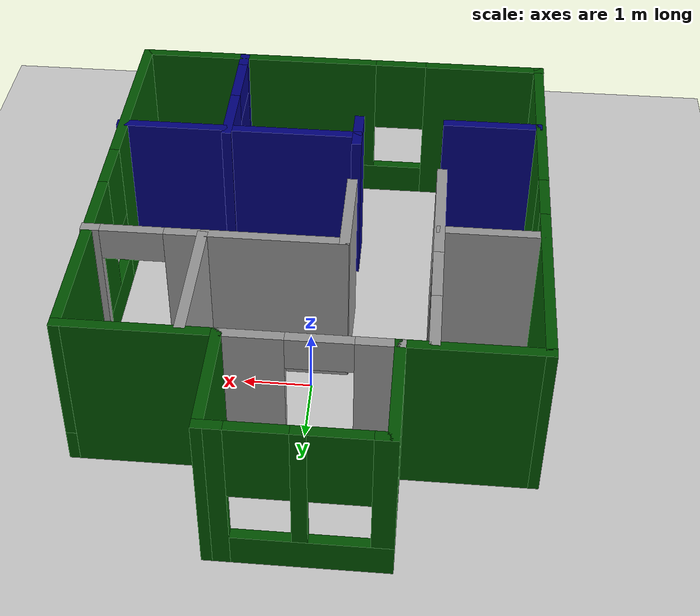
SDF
<sdf version="1.6">
 <world name="default">
  <model name="ground_plane">
   <static>1</static>
   <link name="link">
    <collision name="collision">
     <geometry><plane><normal>0 0 1</normal><size>100 100</size></plane></geometry>
     <surface>
      <contact><collide_bitmask>65535</collide_bitmask></contact>
      <friction><ode><mu>100</mu><mu2>50</mu2></ode></friction>
     </surface>
    </collision>
    <visual name="visual">
     <cast_shadows>0</cast_shadows>
     <geometry><plane><normal>0 0 1</normal><size>100 100</size></plane></geometry>
     <material>
      <script><uri>file://media/materials/scripts/gazebo.material</uri><name>Gazebo/Grey</name></script>
     </material>
    </visual>
   </link>
  </model>
  <model name="house">
   <pose>-0.01675 -0.86593 0 0 -0 0</pose>
   <link name="Wall_10">
    <collision name="Wall_10_Collision">
     <geometry><box><size>2.25 0.15 2.5</size></box></geometry>
     <pose>0 0 1.25 0 -0 0</pose>
    </collision>
    <visual name="Wall_10_Visual">
     <pose>0 0 1.25 0 -0 0</pose>
     <geometry><box><size>2.25 0.15 2.5</size></box></geometry>
     <material>
      <script><uri>file://media/materials/scripts/gazebo.material</uri><name>Gazebo/Grey</name></script>
      <ambient>0 0.333333 0 1</ambient>
     </material>
     <meta><layer>0</layer></meta>
    </visual>
    <pose>2.11595 2.48106 0 0 -0 3.14159</pose>
   </link>
   <link name="Wall_11">
    <collision name="Wall_11_Collision">
     <geometry><box><size>1.75 0.15 2.5</size></box></geometry>
     <pose>0 0 1.25 0 -0 0</pose>
    </collision>
    <visual name="Wall_11_Visual">
     <pose>0 0 1.25 0 -0 0</pose>
     <geometry><box><size>1.75 0.15 2.5</size></box></geometry>
     <material>
      <script><uri>file://media/materials/scripts/gazebo.material</uri><name>Gazebo/Grey</name></script>
      <ambient>0 0.333333 0 1</ambient>
     </material>
     <meta><layer>0</layer></meta>
    </visual>
    <pose>1.06595 3.28106 0 0 -0 1.5708</pose>
   </link>
   <link name="Wall_12">
    <pose>-0.10905 4.08106 0 0 -0 3.14159</pose>
    <visual name="Wall_12_Visual_0">
     <pose>-1.05634 0 1.25 0 -0 0</pose>
     <geometry><box><size>0.387325 0.15 2.5</size></box></geometry>
     <material>
      <script><uri>file://media/materials/scripts/gazebo.material</uri><name>Gazebo/Grey</name></script>
      <ambient>0 0.333333 0 1</ambient>
     </material>
     <meta><layer>0</layer></meta>
    </visual>
    <collision name="Wall_12_Collision_0">
     <geometry><box><size>0.387325 0.15 2.5</size></box></geometry>
     <pose>-1.05634 0 1.25 0 -0 0</pose>
    </collision>
    <visual name="Wall_12_Visual_1">
     <pose>0.193662 0 0.25 0 -0 0</pose>
     <geometry><box><size>2.11267 0.15 0.5</size></box></geometry>
     <material>
      <script><uri>file://media/materials/scripts/gazebo.material</uri><name>Gazebo/Grey</name></script>
      <ambient>0 0.333333 0 1</ambient>
     </material>
     <meta><layer>0</layer></meta>
    </visual>
    <collision name="Wall_12_Collision_1">
     <geometry><box><size>2.11267 0.15 0.5</size></box></geometry>
     <pose>0.193662 0 0.25 0 -0 0</pose>
    </collision>
    <visual name="Wall_12_Visual_2">
     <pose>0.041554 0 1.5 0 -0 0</pose>
     <geometry><box><size>0.208458 0.15 2</size></box></geometry>
     <material>
      <script><uri>file://media/materials/scripts/gazebo.material</uri><name>Gazebo/Grey</name></script>
      <ambient>0 0.333333 0 1</ambient>
     </material>
     <meta><layer>0</layer></meta>
    </visual>
    <collision name="Wall_12_Collision_2">
     <geometry><box><size>0.208458 0.15 2</size></box></geometry>
     <pose>0.041554 0 1.5 0 -0 0</pose>
    </collision>
    <visual name="Wall_12_Visual_3">
     <pose>1.09789 0 1.5 0 -0 0</pose>
     <geometry><box><size>0.304217 0.15 2</size></box></geometry>
     <material>
      <script><uri>file://media/materials/scripts/gazebo.material</uri><name>Gazebo/Grey</name></script>
      <ambient>0 0.333333 0 1</ambient>
     </material>
     <meta><layer>0</layer></meta>
    </visual>
    <collision name="Wall_12_Collision_3">
     <geometry><box><size>0.304217 0.15 2</size></box></geometry>
     <pose>1.09789 0 1.5 0 -0 0</pose>
    </collision>
    <visual name="Wall_12_Visual_4">
     <pose>-0.462675 0 1.9 0 -0 0</pose>
     <geometry><box><size>0.8 0.15 1.2</size></box></geometry>
     <material>
      <script><uri>file://media/materials/scripts/gazebo.material</uri><name>Gazebo/Grey</name></script>
      <ambient>0 0.333333 0 1</ambient>
     </material>
     <meta><layer>0</layer></meta>
    </visual>
    <collision name="Wall_12_Collision_4">
     <geometry><box><size>0.8 0.15 1.2</size></box></geometry>
     <pose>-0.462675 0 1.9 0 -0 0</pose>
    </collision>
    <visual name="Wall_12_Visual_5">
     <pose>0.545783 0 1.9 0 -0 0</pose>
     <geometry><box><size>0.8 0.15 1.2</size></box></geometry>
     <material>
      <script><uri>file://media/materials/scripts/gazebo.material</uri><name>Gazebo/Grey</name></script>
      <ambient>0 0.333333 0 1</ambient>
     </material>
     <meta><layer>0</layer></meta>
    </visual>
    <collision name="Wall_12_Collision_5">
     <geometry><box><size>0.8 0.15 1.2</size></box></geometry>
     <pose>0.545783 0 1.9 0 -0 0</pose>
    </collision>
   </link>
   <link name="Wall_13">
    <collision name="Wall_13_Collision">
     <geometry><box><size>1.75 0.15 2.5</size></box></geometry>
     <pose>0 0 1.25 0 -0 0</pose>
    </collision>
    <visual name="Wall_13_Visual">
     <pose>0 0 1.25 0 -0 0</pose>
     <geometry><box><size>1.75 0.15 2.5</size></box></geometry>
     <material>
      <script><uri>file://media/materials/scripts/gazebo.material</uri><name>Gazebo/Grey</name></script>
      <ambient>0 0.333333 0 1</ambient>
     </material>
     <meta><layer>0</layer></meta>
    </visual>
    <pose>-1.28405 3.28106 0 0 -0 -1.5708</pose>
   </link>
   <link name="Wall_14">
    <collision name="Wall_14_Collision">
     <geometry><box><size>2.05 0.15 2.5</size></box></geometry>
     <pose>0 0 1.25 0 -0 0</pose>
    </collision>
    <visual name="Wall_14_Visual">
     <pose>0 0 1.25 0 -0 0</pose>
     <geometry><box><size>2.05 0.15 2.5</size></box></geometry>
     <material>
      <script><uri>file://media/materials/scripts/gazebo.material</uri><name>Gazebo/Grey</name></script>
      <ambient>0 0.333333 0 1</ambient>
     </material>
     <meta><layer>0</layer></meta>
    </visual>
    <pose>-2.23405 2.48106 0 0 -0 3.14159</pose>
   </link>
   <link name="Wall_15">
    <pose>-3.18405 -0.799958 0 0 -0 -1.5708</pose>
    <visual name="Wall_15_Visual_0">
     <pose>-1.90849 0 1.25 0 -0 0</pose>
     <geometry><box><size>2.89522 0.15 2.5</size></box></geometry>
     <material>
      <script><uri>file://media/materials/scripts/gazebo.material</uri><name>Gazebo/Grey</name></script>
      <ambient>0 0.333333 0 1</ambient>
     </material>
     <meta><layer>0</layer></meta>
    </visual>
    <collision name="Wall_15_Collision_0">
     <geometry><box><size>2.89522 0.15 2.5</size></box></geometry>
     <pose>-1.90849 0 1.25 0 -0 0</pose>
    </collision>
    <visual name="Wall_15_Visual_1">
     <pose>1.44761 0 0.25 0 -0 0</pose>
     <geometry><box><size>3.81698 0.15 0.5</size></box></geometry>
     <material>
      <script><uri>file://media/materials/scripts/gazebo.material</uri><name>Gazebo/Grey</name></script>
      <ambient>0 0.333333 0 1</ambient>
     </material>
     <meta><layer>0</layer></meta>
    </visual>
    <collision name="Wall_15_Collision_1">
     <geometry><box><size>3.81698 0.15 0.5</size></box></geometry>
     <pose>1.44761 0 0.25 0 -0 0</pose>
    </collision>
    <visual name="Wall_15_Visual_2">
     <pose>1.84761 0 1.5 0 -0 0</pose>
     <geometry><box><size>3.01699 0.15 2</size></box></geometry>
     <material>
      <script><uri>file://media/materials/scripts/gazebo.material</uri><name>Gazebo/Grey</name></script>
      <ambient>0 0.333333 0 1</ambient>
     </material>
     <meta><layer>0</layer></meta>
    </visual>
    <collision name="Wall_15_Collision_2">
     <geometry><box><size>3.01699 0.15 2</size></box></geometry>
     <pose>1.84761 0 1.5 0 -0 0</pose>
    </collision>
    <visual name="Wall_15_Visual_3">
     <pose>-0.060885 0 1.9 0 -0 0</pose>
     <geometry><box><size>0.8 0.15 1.2</size></box></geometry>
     <material>
      <script><uri>file://media/materials/scripts/gazebo.material</uri><name>Gazebo/Grey</name></script>
      <ambient>0 0.333333 0 1</ambient>
     </material>
     <meta><layer>0</layer></meta>
    </visual>
    <collision name="Wall_15_Collision_3">
     <geometry><box><size>0.8 0.15 1.2</size></box></geometry>
     <pose>-0.060885 0 1.9 0 -0 0</pose>
    </collision>
   </link>
   <link name="Wall_18">
    <pose>-0.10905 2.48106 0 0 -0 0</pose>
    <visual name="Wall_18_Visual_0">
     <pose>-0.923545 0 1.25 0 -0 0</pose>
     <geometry><box><size>0.65291 0.15 2.5</size></box></geometry>
     <material>
      <script><uri>file://media/materials/scripts/gazebo.material</uri><name>Gazebo/Grey</name></script>
      <ambient>1 1 1 1</ambient>
     </material>
     <meta><layer>0</layer></meta>
    </visual>
    <collision name="Wall_18_Collision_0">
     <geometry><box><size>0.65291 0.15 2.5</size></box></geometry>
     <pose>-0.923545 0 1.25 0 -0 0</pose>
    </collision>
    <visual name="Wall_18_Visual_1">
     <pose>0.776455 0 1.25 0 -0 0</pose>
     <geometry><box><size>0.94709 0.15 2.5</size></box></geometry>
     <material>
      <script><uri>file://media/materials/scripts/gazebo.material</uri><name>Gazebo/Grey</name></script>
      <ambient>1 1 1 1</ambient>
     </material>
     <meta><layer>0</layer></meta>
    </visual>
    <collision name="Wall_18_Collision_1">
     <geometry><box><size>0.94709 0.15 2.5</size></box></geometry>
     <pose>0.776455 0 1.25 0 -0 0</pose>
    </collision>
    <visual name="Wall_18_Visual_2">
     <pose>-0.14709 0 2.25 0 -0 0</pose>
     <geometry><box><size>0.9 0.15 0.5</size></box></geometry>
     <material>
      <script><uri>file://media/materials/scripts/gazebo.material</uri><name>Gazebo/Grey</name></script>
      <ambient>1 1 1 1</ambient>
     </material>
     <meta><layer>0</layer></meta>
    </visual>
    <collision name="Wall_18_Collision_2">
     <geometry><box><size>0.9 0.15 0.5</size></box></geometry>
     <pose>-0.14709 0 2.25 0 -0 0</pose>
    </collision>
   </link>
   <link name="Wall_20">
    <pose>1.38768 0.513735 0 0 -0 3.14159</pose>
    <visual name="Wall_20_Visual_0">
     <pose>-1.74188 0 1.25 0 -0 0</pose>
     <geometry><box><size>0.266242 0.15 2.5</size></box></geometry>
     <material>
      <script><uri>file://media/materials/scripts/gazebo.material</uri><name>Gazebo/Grey</name></script>
      <ambient>1 1 1 1</ambient>
     </material>
     <meta><layer>0</layer></meta>
    </visual>
    <collision name="Wall_20_Collision_0">
     <geometry><box><size>0.266242 0.15 2.5</size></box></geometry>
     <pose>-1.74188 0 1.25 0 -0 0</pose>
    </collision>
    <visual name="Wall_20_Visual_1">
     <pose>0.583121 0 1.25 0 -0 0</pose>
     <geometry><box><size>2.58376 0.15 2.5</size></box></geometry>
     <material>
      <script><uri>file://media/materials/scripts/gazebo.material</uri><name>Gazebo/Grey</name></script>
      <ambient>1 1 1 1</ambient>
     </material>
     <meta><layer>0</layer></meta>
    </visual>
    <collision name="Wall_20_Collision_1">
     <geometry><box><size>2.58376 0.15 2.5</size></box></geometry>
     <pose>0.583121 0 1.25 0 -0 0</pose>
    </collision>
    <visual name="Wall_20_Visual_2">
     <pose>-1.15876 0 2.25 0 -0 0</pose>
     <geometry><box><size>0.9 0.15 0.5</size></box></geometry>
     <material>
      <script><uri>file://media/materials/scripts/gazebo.material</uri><name>Gazebo/Grey</name></script>
      <ambient>1 1 1 1</ambient>
     </material>
     <meta><layer>0</layer></meta>
    </visual>
    <collision name="Wall_20_Collision_2">
     <geometry><box><size>0.9 0.15 0.5</size></box></geometry>
     <pose>-1.15876 0 2.25 0 -0 0</pose>
    </collision>
   </link>
   <link name="Wall_21">
    <collision name="Wall_21_Collision">
     <geometry><box><size>1.5 0.15 2.5</size></box></geometry>
     <pose>0 0 1.25 0 -0 0</pose>
    </collision>
    <visual name="Wall_21_Visual">
     <pose>0 0 1.25 0 -0 0</pose>
     <geometry><box><size>1.5 0.15 2.5</size></box></geometry>
     <material>
      <script><uri>file://media/materials/scripts/gazebo.material</uri><name>Gazebo/Grey</name></script>
      <ambient>1 1 1 1</ambient>
     </material>
     <meta><layer>0</layer></meta>
    </visual>
    <pose>-0.42405 -0.161265 0 0 -0 -1.5708</pose>
   </link>
   <link name="Wall_24">
    <collision name="Wall_24_Collision">
     <geometry><box><size>0.75 0.15 2.5</size></box></geometry>
     <pose>0 0 1.25 0 -0 0</pose>
    </collision>
    <visual name="Wall_24_Visual">
     <pose>0 0 1.25 0 -0 0</pose>
     <geometry><box><size>0.75 0.15 2.5</size></box></geometry>
     <material>
      <script><uri>file://media/materials/scripts/gazebo.material</uri><name>Gazebo/Grey</name></script>
      <ambient>0 0 0.498039 1</ambient>
     </material>
     <meta><layer>0</layer></meta>
    </visual>
    <pose>-0.415776 -2.15984 0 0 -0 -1.5708</pose>
   </link>
   <link name="Wall_36">
    <collision name="Wall_36_Collision">
     <geometry><box><size>1.5 0.15 2.5</size></box></geometry>
     <pose>0 0 1.25 0 -0 0</pose>
    </collision>
    <visual name="Wall_36_Visual">
     <pose>0 0 1.25 0 -0 0</pose>
     <geometry><box><size>1.5 0.15 2.5</size></box></geometry>
     <material>
      <script><uri>file://media/materials/scripts/gazebo.material</uri><name>Gazebo/Grey</name></script>
      <ambient>0 0 0.498039 1</ambient>
     </material>
     <meta><layer>0</layer></meta>
    </visual>
    <pose>-2.45376 -2.47368 0 0 -0 0</pose>
   </link>
   <link name="Wall_38">
    <pose>-1.71474 0.603069 0 0 -0 -1.5708</pose>
    <visual name="Wall_38_Visual_0">
     <pose>-1.39969 0 1.25 0 -0 0</pose>
     <geometry><box><size>0.950613 0.15 2.5</size></box></geometry>
     <material>
      <script><uri>file://media/materials/scripts/gazebo.material</uri><name>Gazebo/Grey</name></script>
      <ambient>1 1 1 1</ambient>
     </material>
     <meta><layer>0</layer></meta>
    </visual>
    <collision name="Wall_38_Collision_0">
     <geometry><box><size>0.950613 0.15 2.5</size></box></geometry>
     <pose>-1.39969 0 1.25 0 -0 0</pose>
    </collision>
    <visual name="Wall_38_Visual_1">
     <pose>0.925306 0 1.25 0 -0 0</pose>
     <geometry><box><size>1.89939 0.15 2.5</size></box></geometry>
     <material>
      <script><uri>file://media/materials/scripts/gazebo.material</uri><name>Gazebo/Grey</name></script>
      <ambient>1 1 1 1</ambient>
     </material>
     <meta><layer>0</layer></meta>
    </visual>
    <collision name="Wall_38_Collision_1">
     <geometry><box><size>1.89939 0.15 2.5</size></box></geometry>
     <pose>0.925306 0 1.25 0 -0 0</pose>
    </collision>
    <visual name="Wall_38_Visual_2">
     <pose>-0.474387 0 2.25 0 -0 0</pose>
     <geometry><box><size>0.9 0.15 0.5</size></box></geometry>
     <material>
      <script><uri>file://media/materials/scripts/gazebo.material</uri><name>Gazebo/Grey</name></script>
      <ambient>1 1 1 1</ambient>
     </material>
     <meta><layer>0</layer></meta>
    </visual>
    <collision name="Wall_38_Collision_2">
     <geometry><box><size>0.9 0.15 0.5</size></box></geometry>
     <pose>-0.474387 0 2.25 0 -0 0</pose>
    </collision>
   </link>
   <link name="Wall_40">
    <collision name="Wall_40_Collision">
     <geometry><box><size>1.5 0.15 2.5</size></box></geometry>
     <pose>0 0 1.25 0 -0 0</pose>
    </collision>
    <visual name="Wall_40_Visual">
     <pose>0 0 1.25 0 -0 0</pose>
     <geometry><box><size>1.5 0.15 2.5</size></box></geometry>
     <material>
      <script><uri>file://media/materials/scripts/gazebo.material</uri><name>Gazebo/Grey</name></script>
      <ambient>1 1 1 1</ambient>
     </material>
     <meta><layer>0</layer></meta>
    </visual>
    <pose>-2.41923 0.137532 0 0 -0 0</pose>
   </link>
   <link name="Wall_42">
    <collision name="Wall_42_Collision">
     <geometry><box><size>2 0.15 2.5</size></box></geometry>
     <pose>0 0 1.25 0 -0 0</pose>
    </collision>
    <visual name="Wall_42_Visual">
     <pose>0 0 1.25 0 -0 0</pose>
     <geometry><box><size>2 0.15 2.5</size></box></geometry>
     <material>
      <script><uri>file://media/materials/scripts/gazebo.material</uri><name>Gazebo/Grey</name></script>
      <ambient>1 1 1 1</ambient>
     </material>
     <meta><layer>0</layer></meta>
    </visual>
    <pose>1.55116 1.44868 0 0 -0 -1.5708</pose>
   </link>
   <link name="Wall_44">
    <collision name="Wall_44_Collision">
     <geometry><box><size>3.75 0.15 2.5</size></box></geometry>
     <pose>0 0 1.25 0 -0 0</pose>
    </collision>
    <visual name="Wall_44_Visual">
     <pose>0 0 1.25 0 -0 0</pose>
     <geometry><box><size>3.75 0.15 2.5</size></box></geometry>
     <material>
      <script><uri>file://media/materials/scripts/gazebo.material</uri><name>Gazebo/Grey</name></script>
      <ambient>0 0 0.498039 1</ambient>
     </material>
     <meta><layer>0</layer></meta>
    </visual>
    <pose>1.39578 -2.03829 0 0 -0 3.14159</pose>
   </link>
   <link name="Wall_46">
    <pose>1.56947 -3.02402 0 0 -0 1.5708</pose>
    <visual name="Wall_46_Visual_0">
     <pose>-0.968195 0 1.25 0 -0 0</pose>
     <geometry><box><size>0.313609 0.15 2.5</size></box></geometry>
     <material>
      <script><uri>file://media/materials/scripts/gazebo.material</uri><name>Gazebo/Grey</name></script>
      <ambient>0 0 0.498039 1</ambient>
     </material>
     <meta><layer>0</layer></meta>
    </visual>
    <collision name="Wall_46_Collision_0">
     <geometry><box><size>0.313609 0.15 2.5</size></box></geometry>
     <pose>-0.968195 0 1.25 0 -0 0</pose>
    </collision>
    <visual name="Wall_46_Visual_1">
     <pose>0.606805 0 1.25 0 -0 0</pose>
     <geometry><box><size>1.03639 0.15 2.5</size></box></geometry>
     <material>
      <script><uri>file://media/materials/scripts/gazebo.material</uri><name>Gazebo/Grey</name></script>
      <ambient>0 0 0.498039 1</ambient>
     </material>
     <meta><layer>0</layer></meta>
    </visual>
    <collision name="Wall_46_Collision_1">
     <geometry><box><size>1.03639 0.15 2.5</size></box></geometry>
     <pose>0.606805 0 1.25 0 -0 0</pose>
    </collision>
    <visual name="Wall_46_Visual_2">
     <pose>-0.361391 0 2.25 0 -0 0</pose>
     <geometry><box><size>0.9 0.15 0.5</size></box></geometry>
     <material>
      <script><uri>file://media/materials/scripts/gazebo.material</uri><name>Gazebo/Grey</name></script>
      <ambient>0 0 0.498039 1</ambient>
     </material>
     <meta><layer>0</layer></meta>
    </visual>
    <collision name="Wall_46_Collision_2">
     <geometry><box><size>0.9 0.15 0.5</size></box></geometry>
     <pose>-0.361391 0 2.25 0 -0 0</pose>
    </collision>
   </link>
   <link name="Wall_8">
    <pose>-0.020776 -4.08097 0 0 -0 0</pose>
    <visual name="Wall_8_Visual_0">
     <pose>-2.3025 0 1.25 0 -0 0</pose>
     <geometry><box><size>1.895 0.15 2.5</size></box></geometry>
     <material>
      <script><uri>file://media/materials/scripts/gazebo.material</uri><name>Gazebo/Grey</name></script>
      <ambient>0 0.333333 0 1</ambient>
     </material>
     <meta><layer>0</layer></meta>
    </visual>
    <collision name="Wall_8_Collision_0">
     <geometry><box><size>1.895 0.15 2.5</size></box></geometry>
     <pose>-2.3025 0 1.25 0 -0 0</pose>
    </collision>
    <visual name="Wall_8_Visual_1">
     <pose>0.9475 0 0.25 0 -0 0</pose>
     <geometry><box><size>4.605 0.15 0.5</size></box></geometry>
     <material>
      <script><uri>file://media/materials/scripts/gazebo.material</uri><name>Gazebo/Grey</name></script>
      <ambient>0 0.333333 0 1</ambient>
     </material>
     <meta><layer>0</layer></meta>
    </visual>
    <collision name="Wall_8_Collision_1">
     <geometry><box><size>4.605 0.15 0.5</size></box></geometry>
     <pose>0.9475 0 0.25 0 -0 0</pose>
    </collision>
    <visual name="Wall_8_Visual_2">
     <pose>1.3475 0 1.5 0 -0 0</pose>
     <geometry><box><size>3.805 0.15 2</size></box></geometry>
     <material>
      <script><uri>file://media/materials/scripts/gazebo.material</uri><name>Gazebo/Grey</name></script>
      <ambient>0 0.333333 0 1</ambient>
     </material>
     <meta><layer>0</layer></meta>
    </visual>
    <collision name="Wall_8_Collision_2">
     <geometry><box><size>3.805 0.15 2</size></box></geometry>
     <pose>1.3475 0 1.5 0 -0 0</pose>
    </collision>
    <visual name="Wall_8_Visual_3">
     <pose>-0.955 0 1.9 0 -0 0</pose>
     <geometry><box><size>0.8 0.15 1.2</size></box></geometry>
     <material>
      <script><uri>file://media/materials/scripts/gazebo.material</uri><name>Gazebo/Grey</name></script>
      <ambient>0 0.333333 0 1</ambient>
     </material>
     <meta><layer>0</layer></meta>
    </visual>
    <collision name="Wall_8_Collision_3">
     <geometry><box><size>0.8 0.15 1.2</size></box></geometry>
     <pose>-0.955 0 1.9 0 -0 0</pose>
    </collision>
   </link>
   <link name="Wall_9">
    <pose>3.16595 -0.799958 0 0 -0 1.5708</pose>
    <visual name="Wall_9_Visual_0">
     <pose>-1.94232 0 1.25 0 -0 0</pose>
     <geometry><box><size>2.82757 0.15 2.5</size></box></geometry>
     <material>
      <script><uri>file://media/materials/scripts/gazebo.material</uri><name>Gazebo/Grey</name></script>
      <ambient>0 0.333333 0 1</ambient>
     </material>
     <meta><layer>0</layer></meta>
    </visual>
    <collision name="Wall_9_Collision_0">
     <geometry><box><size>2.82757 0.15 2.5</size></box></geometry>
     <pose>-1.94232 0 1.25 0 -0 0</pose>
    </collision>
    <visual name="Wall_9_Visual_1">
     <pose>1.41378 0 0.25 0 -0 0</pose>
     <geometry><box><size>3.88463 0.15 0.5</size></box></geometry>
     <material>
      <script><uri>file://media/materials/scripts/gazebo.material</uri><name>Gazebo/Grey</name></script>
      <ambient>0 0.333333 0 1</ambient>
     </material>
     <meta><layer>0</layer></meta>
    </visual>
    <collision name="Wall_9_Collision_1">
     <geometry><box><size>3.88463 0.15 0.5</size></box></geometry>
     <pose>1.41378 0 0.25 0 -0 0</pose>
    </collision>
    <visual name="Wall_9_Visual_2">
     <pose>1.81378 0 1.5 0 -0 0</pose>
     <geometry><box><size>3.08464 0.15 2</size></box></geometry>
     <material>
      <script><uri>file://media/materials/scripts/gazebo.material</uri><name>Gazebo/Grey</name></script>
      <ambient>0 0.333333 0 1</ambient>
     </material>
     <meta><layer>0</layer></meta>
    </visual>
    <collision name="Wall_9_Collision_2">
     <geometry><box><size>3.08464 0.15 2</size></box></geometry>
     <pose>1.81378 0 1.5 0 -0 0</pose>
    </collision>
    <visual name="Wall_9_Visual_3">
     <pose>-0.128535 0 1.9 0 -0 0</pose>
     <geometry><box><size>0.8 0.15 1.2</size></box></geometry>
     <material>
      <script><uri>file://media/materials/scripts/gazebo.material</uri><name>Gazebo/Grey</name></script>
      <ambient>0 0.333333 0 1</ambient>
     </material>
     <meta><layer>0</layer></meta>
    </visual>
    <collision name="Wall_9_Collision_3">
     <geometry><box><size>0.8 0.15 1.2</size></box></geometry>
     <pose>-0.128535 0 1.9 0 -0 0</pose>
    </collision>
   </link>
   <static>1</static>
  </model>
  <model name="bookshelf">
   <static>1</static>
   <link name="link">
    <inertial><mass>1</mass></inertial>
    <collision name="back">
     <pose>0 0.005 0.6 0 -0 0</pose>
     <geometry><box><size>0.9 0.01 1.2</size></box></geometry>
    </collision>
    <visual name="visual1">
     <pose>0 0.005 0.6 0 -0 0</pose>
     <geometry><box><size>0.9 0.01 1.2</size></box></geometry>
     <material>
      <script><uri>file://media/materials/scripts/gazebo.material</uri><name>Gazebo/Wood</name></script>
     </material>
    </visual>
    <collision name="left_side">
     <pose>0.45 -0.195 0.6 0 -0 0</pose>
     <geometry><box><size>0.02 0.4 1.2</size></box></geometry>
    </collision>
    <visual name="visual2">
     <pose>0.45 -0.195 0.6 0 -0 0</pose>
     <geometry><box><size>0.02 0.4 1.2</size></box></geometry>
     <material>
      <script><uri>file://media/materials/scripts/gazebo.material</uri><name>Gazebo/Wood</name></script>
     </material>
    </visual>
    <collision name="right_side">
     <pose>-0.45 -0.195 0.6 0 -0 0</pose>
     <geometry><box><size>0.02 0.4 1.2</size></box></geometry>
    </collision>
    <visual name="visual3">
     <pose>-0.45 -0.195 0.6 0 -0 0</pose>
     <geometry><box><size>0.02 0.4 1.2</size></box></geometry>
     <material>
      <script><uri>file://media/materials/scripts/gazebo.material</uri><name>Gazebo/Wood</name></script>
     </material>
    </visual>
    <collision name="bottom">
     <pose>0 -0.195 0.03 0 -0 0</pose>
     <geometry><box><size>0.88 0.4 0.06</size></box></geometry>
    </collision>
    <visual name="visual4">
     <pose>0 -0.195 0.03 0 -0 0</pose>
     <geometry><box><size>0.88 0.4 0.06</size></box></geometry>
     <material>
      <script><uri>file://media/materials/scripts/gazebo.material</uri><name>Gazebo/Wood</name></script>
     </material>
    </visual>
    <collision name="top">
     <pose>0 -0.195 1.19 0 -0 0</pose>
     <geometry><box><size>0.88 0.4 0.02</size></box></geometry>
    </collision>
    <visual name="visual5">
     <pose>0 -0.195 1.19 0 -0 0</pose>
     <geometry><box><size>0.88 0.4 0.02</size></box></geometry>
     <material>
      <script><uri>file://media/materials/scripts/gazebo.material</uri><name>Gazebo/Wood</name></script>
     </material>
    </visual>
    <collision name="low_shelf">
     <pose>0 -0.195 0.43 0 -0 0</pose>
     <geometry><box><size>0.88 0.4 0.02</size></box></geometry>
    </collision>
    <visual name="visual6">
     <pose>0 -0.195 0.43 0 -0 0</pose>
     <geometry><box><size>0.88 0.4 0.02</size></box></geometry>
     <material>
      <script><uri>file://media/materials/scripts/gazebo.material</uri><name>Gazebo/Wood</name></script>
     </material>
    </visual>
    <collision name="high_shelf">
     <pose>0 -0.195 0.8 0 -0 0</pose>
     <geometry><box><size>0.88 0.4 0.02</size></box></geometry>
    </collision>
    <visual name="visual7">
     <pose>0 -0.195 0.8 0 -0 0</pose>
     <geometry><box><size>0.88 0.4 0.02</size></box></geometry>
     <material>
      <script><uri>file://media/materials/scripts/gazebo.material</uri><name>Gazebo/Wood</name></script>
     </material>
    </visual>
   </link>
   <pose>-2.65166 -0.817927 0 0 -0 0</pose>
  </model>
  <model name="blue_ball">
   <link name="link_0">
    <inertial>
     <mass>1</mass>
     <inertia><ixx>0.1</ixx><ixy>0</ixy><ixz>0</ixz><iyy>0.1</iyy><iyz>0</iyz><izz>0.1</izz></inertia>
    </inertial>
    <visual name="visual">
     <geometry><sphere><radius>0.1</radius></sphere></geometry>
     <material>
      <lighting>1</lighting>
      <script><uri>file://media/materials/scripts/gazebo.material</uri><name>Gazebo/Grey</name></script>
      <shader type="pixel"><normal_map>__default__</normal_map></shader>
      <ambient>0 0 1 1</ambient>
      <diffuse>0 0 1 1</diffuse>
      <specular>0 0 1 1</specular>
      <emissive>0 0 1 1</emissive>
     </material>
    </visual>
    <collision name="collision">
     <geometry><sphere><radius>0.1</radius></sphere></geometry>
     <surface>
      <friction>
       <ode><mu>1</mu><mu2>1</mu2><fdir1>0 0 0</fdir1><slip1>0</slip1><slip2>0</slip2></ode>
       <torsional>
        <coefficient>1</coefficient>
        <patch_radius>0</patch_radius>
        <surface_radius>0</surface_radius>
        <use_patch_radius>1</use_patch_radius>
        <ode><slip>0</slip></ode>
       </torsional>
      </friction>
      <bounce><restitution_coefficient>0</restitution_coefficient><threshold>1e+06</threshold></bounce>
      <contact>
       <collide_without_contact>0</collide_without_contact>
       <collide_without_contact_bitmask>1</collide_without_contact_bitmask>
       <collide_bitmask>1</collide_bitmask>
       <ode>
        <soft_cfm>0</soft_cfm>
        <soft_erp>0.2</soft_erp>
        <kp>1e+13</kp>
        <kd>1</kd>
        <max_vel>0.01</max_vel>
        <min_depth>0</min_depth>
       </ode>
       <bullet>
        <split_impulse>1</split_impulse>
        <split_impulse_penetration_threshold>-0.01</split_impulse_penetration_threshold>
        <soft_cfm>0</soft_cfm>
        <soft_erp>0.2</soft_erp>
        <kp>1e+13</kp>
        <kd>1</kd>
       </bullet>
      </contact>
     </surface>
    </collision>
   </link>
   <static>0</static>
   <pose>1.18891 0.383605 0.1 0 -0 0</pose>
  </model>
  <model name="green_ball">
   <link name="link_0">
    <inertial>
     <mass>1</mass>
     <inertia><ixx>0.1</ixx><ixy>0</ixy><ixz>0</ixz><iyy>0.1</iyy><iyz>0</iyz><izz>0.1</izz></inertia>
    </inertial>
    <visual name="visual">
     <geometry><sphere><radius>0.1</radius></sphere></geometry>
     <material>
      <lighting>1</lighting>
      <script><uri>file://media/materials/scripts/gazebo.material</uri><name>Gazebo/Grey</name></script>
      <shader type="pixel"><normal_map>__default__</normal_map></shader>
      <ambient>0.12 0.76 0.46 1</ambient>
      <diffuse>0.12 0.76 0.46 1</diffuse>
      <specular>0.12 0.76 0.46 1</specular>
      <emissive>0.12 0.76 0.46 1</emissive>
     </material>
    </visual>
    <collision name="collision">
     <geometry><sphere><radius>0.1</radius></sphere></geometry>
     <surface>
      <friction>
       <ode><mu>1</mu><mu2>1</mu2><fdir1>0 0 0</fdir1><slip1>0</slip1><slip2>0</slip2></ode>
       <torsional>
        <coefficient>1</coefficient>
        <patch_radius>0</patch_radius>
        <surface_radius>0</surface_radius>
        <use_patch_radius>1</use_patch_radius>
        <ode><slip>0</slip></ode>
       </torsional>
      </friction>
      <bounce><restitution_coefficient>0</restitution_coefficient><threshold>1e+06</threshold></bounce>
      <contact>
       <collide_without_contact>0</collide_without_contact>
       <collide_without_contact_bitmask>1</collide_without_contact_bitmask>
       <collide_bitmask>1</collide_bitmask>
       <ode>
        <soft_cfm>0</soft_cfm>
        <soft_erp>0.2</soft_erp>
        <kp>1e+13</kp>
        <kd>1</kd>
        <max_vel>0.01</max_vel>
        <min_depth>0</min_depth>
       </ode>
       <bullet>
        <split_impulse>1</split_impulse>
        <split_impulse_penetration_threshold>-0.01</split_impulse_penetration_threshold>
        <soft_cfm>0</soft_cfm>
        <soft_erp>0.2</soft_erp>
        <kp>1e+13</kp>
        <kd>1</kd>
       </bullet>
      </contact>
     </surface>
    </collision>
   </link>
   <static>0</static>
   <pose>1.20207 0.844553 0.1 0 -0 0</pose>
  </model>
  <model name="yellow_ball">
   <link name="link_0">
    <inertial>
     <mass>1</mass>
     <inertia><ixx>0.1</ixx><ixy>0</ixy><ixz>0</ixz><iyy>0.1</iyy><iyz>0</iyz><izz>0.1</izz></inertia>
    </inertial>
    <visual name="visual">
     <geometry><sphere><radius>0.1</radius></sphere></geometry>
     <material>
      <lighting>1</lighting>
      <script><uri>file://media/materials/scripts/gazebo.material</uri><name>Gazebo/Grey</name></script>
      <shader type="pixel"><normal_map>__default__</normal_map></shader>
      <ambient>1 1 0 1</ambient>
      <diffuse>1 1 0 1</diffuse>
      <specular>1 1 0 1</specular>
      <emissive>1 1 0 1</emissive>
     </material>
    </visual>
    <collision name="collision">
     <geometry><sphere><radius>0.1</radius></sphere></geometry>
     <surface>
      <friction>
       <ode><mu>1</mu><mu2>1</mu2><fdir1>0 0 0</fdir1><slip1>0</slip1><slip2>0</slip2></ode>
       <torsional>
        <coefficient>1</coefficient>
        <patch_radius>0</patch_radius>
        <surface_radius>0</surface_radius>
        <use_patch_radius>1</use_patch_radius>
        <ode><slip>0</slip></ode>
       </torsional>
      </friction>
      <bounce><restitution_coefficient>0</restitution_coefficient><threshold>1e+06</threshold></bounce>
      <contact>
       <collide_without_contact>0</collide_without_contact>
       <collide_without_contact_bitmask>1</collide_without_contact_bitmask>
       <collide_bitmask>1</collide_bitmask>
       <ode>
        <soft_cfm>0</soft_cfm>
        <soft_erp>0.2</soft_erp>
        <kp>1e+13</kp>
        <kd>1</kd>
        <max_vel>0.01</max_vel>
        <min_depth>0</min_depth>
       </ode>
       <bullet>
        <split_impulse>1</split_impulse>
        <split_impulse_penetration_threshold>-0.01</split_impulse_penetration_threshold>
        <soft_cfm>0</soft_cfm>
        <soft_erp>0.2</soft_erp>
        <kp>1e+13</kp>
        <kd>1</kd>
       </bullet>
      </contact>
     </surface>
    </collision>
   </link>
   <static>0</static>
   <pose>1.19328 -0.069316 0.1 0 -0 0</pose>
  </model>
  <model name="white_ball">
   <link name="link_0">
    <inertial>
     <mass>1</mass>
     <inertia><ixx>0.1</ixx><ixy>0</ixy><ixz>0</ixz><iyy>0.1</iyy><iyz>0</iyz><izz>0.1</izz></inertia>
    </inertial>
    <visual name="visual">
     <geometry><sphere><radius>0.1</radius></sphere></geometry>
     <material>
      <lighting>1</lighting>
      <script><uri>file://media/materials/scripts/gazebo.material</uri><name>Gazebo/Grey</name></script>
      <shader type="pixel"><normal_map>__default__</normal_map></shader>
      <ambient>1 1 1 1</ambient>
      <diffuse>1 1 1 1</diffuse>
      <specular>1 1 1 1</specular>
      <emissive>1 1 1 1</emissive>
     </material>
    </visual>
    <collision name="collision">
     <geometry><sphere><radius>0.1</radius></sphere></geometry>
     <surface>
      <friction>
       <ode><mu>1</mu><mu2>1</mu2><fdir1>0 0 0</fdir1><slip1>0</slip1><slip2>0</slip2></ode>
       <torsional>
        <coefficient>1</coefficient>
        <patch_radius>0</patch_radius>
        <surface_radius>0</surface_radius>
        <use_patch_radius>1</use_patch_radius>
        <ode><slip>0</slip></ode>
       </torsional>
      </friction>
      <bounce><restitution_coefficient>0</restitution_coefficient><threshold>1e+06</threshold></bounce>
      <contact>
       <collide_without_contact>0</collide_without_contact>
       <collide_without_contact_bitmask>1</collide_without_contact_bitmask>
       <collide_bitmask>1</collide_bitmask>
       <ode>
        <soft_cfm>0</soft_cfm>
        <soft_erp>0.2</soft_erp>
        <kp>1e+13</kp>
        <kd>1</kd>
        <max_vel>0.01</max_vel>
        <min_depth>0</min_depth>
       </ode>
       <bullet>
        <split_impulse>1</split_impulse>
        <split_impulse_penetration_threshold>-0.01</split_impulse_penetration_threshold>
        <soft_cfm>0</soft_cfm>
        <soft_erp>0.2</soft_erp>
        <kp>1e+13</kp>
        <kd>1</kd>
       </bullet>
      </contact>
     </surface>
    </collision>
   </link>
   <static>0</static>
   <pose>2.36671 0.574948 0.1 0 -0 0</pose>
  </model>
  <model name="red_ball">
   <link name="link_0">
    <inertial>
     <mass>1</mass>
     <inertia><ixx>0.1</ixx><ixy>0</ixy><ixz>0</ixz><iyy>0.1</iyy><iyz>0</iyz><izz>0.1</izz></inertia>
    </inertial>
    <visual name="visual">
     <geometry><sphere><radius>0.1</radius></sphere></geometry>
     <material>
      <lighting>1</lighting>
      <script><uri>file://media/materials/scripts/gazebo.material</uri><name>Gazebo/Grey</name></script>
      <shader type="pixel"><normal_map>__default__</normal_map></shader>
      <ambient>1 0 0 1</ambient>
      <diffuse>1 0 0 1</diffuse>
      <specular>1 0 0 1</specular>
      <emissive>1 0 0 1</emissive>
     </material>
    </visual>
    <collision name="collision">
     <geometry><sphere><radius>0.1</radius></sphere></geometry>
     <surface>
      <friction>
       <ode><mu>1</mu><mu2>1</mu2><fdir1>0 0 0</fdir1><slip1>0</slip1><slip2>0</slip2></ode>
       <torsional>
        <coefficient>1</coefficient>
        <patch_radius>0</patch_radius>
        <surface_radius>0</surface_radius>
        <use_patch_radius>1</use_patch_radius>
        <ode><slip>0</slip></ode>
       </torsional>
      </friction>
      <bounce><restitution_coefficient>0</restitution_coefficient><threshold>1e+06</threshold></bounce>
      <contact>
       <collide_without_contact>0</collide_without_contact>
       <collide_without_contact_bitmask>1</collide_without_contact_bitmask>
       <collide_bitmask>1</collide_bitmask>
       <ode>
        <soft_cfm>0</soft_cfm>
        <soft_erp>0.2</soft_erp>
        <kp>1e+13</kp>
        <kd>1</kd>
        <max_vel>0.01</max_vel>
        <min_depth>0</min_depth>
       </ode>
       <bullet>
        <split_impulse>1</split_impulse>
        <split_impulse_penetration_threshold>-0.01</split_impulse_penetration_threshold>
        <soft_cfm>0</soft_cfm>
        <soft_erp>0.2</soft_erp>
        <kp>1e+13</kp>
        <kd>1</kd>
       </bullet>
      </contact>
     </surface>
    </collision>
   </link>
   <static>0</static>
   <pose>1.20233 1.27496 0.1 0 -0 0</pose>
  </model>
 </world>
</sdf>
